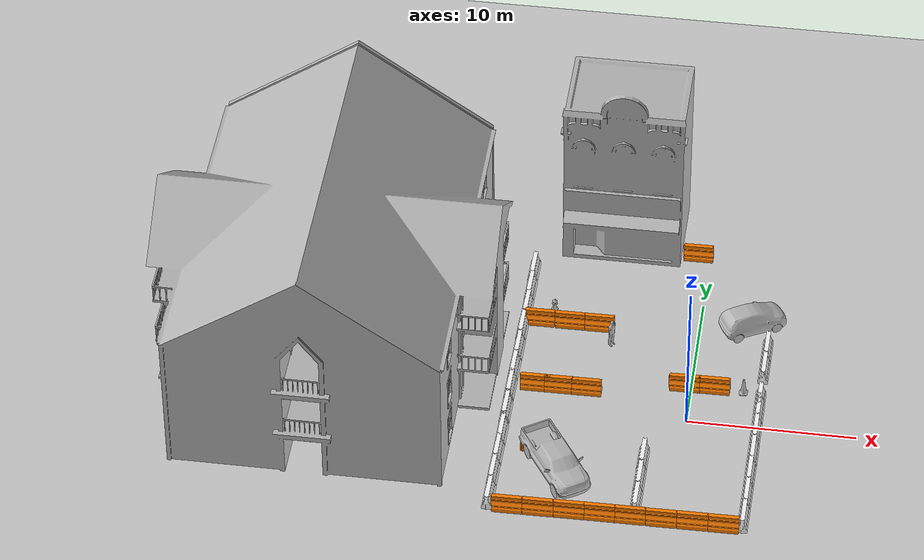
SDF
<sdf version="1.7">
 <world name="default">
  <light name="sun" type="directional">
   <pose>0 0 10 0 -0 0</pose>
   <diffuse>0.8 0.8 0.8 1</diffuse>
   <specular>0.2 0.2 0.2 1</specular>
   <attenuation>
    <range>1000</range>
    <constant>0.9</constant>
    <linear>0.01</linear>
    <quadratic>0.001</quadratic>
   </attenuation>
   <direction>-0.5 0.1 -0.9</direction>
   <spot><inner_angle>0</inner_angle><outer_angle>0</outer_angle><falloff>0</falloff></spot>
  </light>
  <model name="ground_plane">
   <static>1</static>
   <link name="link">
    <collision name="collision">
     <geometry><plane><normal>0 0 1</normal><size>100 100</size></plane></geometry>
     <surface>
      <contact><collide_bitmask>65535</collide_bitmask></contact>
      <friction><ode><mu>100</mu><mu2>50</mu2></ode></friction>
     </surface>
    </collision>
    <visual name="visual">
     <cast_shadows>0</cast_shadows>
     <geometry><plane><normal>0 0 1</normal><size>100 100</size></plane></geometry>
     <material>
      <script><uri>file://media/materials/scripts/gazebo.material</uri><name>Gazebo/Grey</name></script>
     </material>
    </visual>
   </link>
  </model>
  <gravity>0 0 -9.8</gravity>
  <magnetic_field>6e-06 2.3e-05 -4.2e-05</magnetic_field>
  <atmosphere type="adiabatic"/>
  <physics type="ode">
   <max_step_size>0.001</max_step_size>
   <real_time_factor>1</real_time_factor>
   <real_time_update_rate>1000</real_time_update_rate>
  </physics>
  <scene><ambient>0.4 0.4 0.4 1</ambient><background>0.7 0.7 0.7 1</background><shadows>1</shadows></scene>
  <spherical_coordinates>
   <surface_model>EARTH_WGS84</surface_model>
   <latitude_deg>0</latitude_deg>
   <longitude_deg>0</longitude_deg>
   <elevation>0</elevation>
   <heading_deg>0</heading_deg>
  </spherical_coordinates>
  <model name="thrift_shop">
   <static>1</static>
   <link name="link">
    <collision name="collision">
     <pose>0 0 5.69469 0 -0 0</pose>
     <geometry><box><size>7.21297 5.43165 11.3894</size></box></geometry>
    </collision>
    <visual name="visual">
     <pose>0 -0.912491 0 0 -0 0</pose>
     <geometry><mesh><uri>model://thrift_shop/meshes/thrift_shop.dae</uri></mesh></geometry>
    </visual>
   </link>
   <pose>-5.4254 16.0749 0 0 -0 0</pose>
  </model>
  <model name="apartment">
   <static>1</static>
   <link name="link">
    <collision name="collision">
     <geometry><mesh><uri>model://apartment/meshes/apartment.dae</uri></mesh></geometry>
    </collision>
    <visual name="visual">
     <geometry><mesh><uri>model://apartment/meshes/apartment.dae</uri></mesh></geometry>
    </visual>
   </link>
   <pose>-21.482 3.56693 0 0 -0 0</pose>
  </model>
  <model name="person_standing">
   <link name="link">
    <inertial>
     <pose>0 -0.1 0.95 0 -0 0</pose>
     <mass>80</mass>
     <inertia><ixx>24.88</ixx><ixy>0</ixy><ixz>0</ixz><iyy>25.73</iyy><iyz>0</iyz><izz>2.48</izz></inertia>
    </inertial>
    <collision name="bottom">
     <pose>0 -0.1 0.01 0 -0 0</pose>
     <geometry><box><size>0.5 0.35 0.02</size></box></geometry>
    </collision>
    <collision name="person">
     <pose>0 0 0.02 0.04 -0 0</pose>
     <geometry><mesh><uri>model://person_standing/meshes/standing.dae</uri></mesh></geometry>
    </collision>
    <visual name="visual">
     <pose>0 0 0.02 0.04 -0 0</pose>
     <geometry><mesh><uri>model://person_standing/meshes/standing.dae</uri></mesh></geometry>
    </visual>
   </link>
   <pose>-5.19639 5.97581 0 1e-06 -1e-06 0.964401</pose>
  </model>
  <model name="drc_practice_white_jersey_barrier_1_clone_2_clone">
   <static>1</static>
   <link name="link">
    <visual name="visual">
     <geometry>
      <mesh><uri>model://drc_practice_white_jersey_barrier/meshes/jersey_barrier.dae</uri></mesh>
     </geometry>
    </visual>
    <collision name="collision">
     <geometry>
      <mesh><uri>model://drc_practice_white_jersey_barrier/meshes/jersey_barrier.dae</uri></mesh>
     </geometry>
    </collision>
   </link>
   <pose>-2.13805 -7.17112 0 0 -0 0</pose>
  </model>
  <model name="drc_practice_white_jersey_barrier_1_clone_2_clone_0">
   <static>1</static>
   <link name="link">
    <visual name="visual">
     <geometry>
      <mesh><uri>model://drc_practice_white_jersey_barrier/meshes/jersey_barrier.dae</uri></mesh>
     </geometry>
    </visual>
    <collision name="collision">
     <geometry>
      <mesh><uri>model://drc_practice_white_jersey_barrier/meshes/jersey_barrier.dae</uri></mesh>
     </geometry>
    </collision>
   </link>
   <pose>-2.14572 -3.5959 0 0 -0 0</pose>
  </model>
  <model name="drc_practice_white_jersey_barrier_1_clone_2_clone_1">
   <static>1</static>
   <link name="link">
    <visual name="visual">
     <geometry>
      <mesh><uri>model://drc_practice_white_jersey_barrier/meshes/jersey_barrier.dae</uri></mesh>
     </geometry>
    </visual>
    <collision name="collision">
     <geometry>
      <mesh><uri>model://drc_practice_white_jersey_barrier/meshes/jersey_barrier.dae</uri></mesh>
     </geometry>
    </collision>
   </link>
   <pose>-2.14249 -5.38723 0 0 -0 0</pose>
  </model>
  <model name="drc_practice_organge_jersey_barrier_2_clone_3">
   <static>1</static>
   <link name="link">
    <visual name="visual">
     <geometry>
      <mesh><uri>model://drc_practice_orange_jersey_barrier/meshes/jersey_barrier.dae</uri></mesh>
     </geometry>
    </visual>
    <collision name="collision">
     <geometry>
      <mesh><uri>model://drc_practice_orange_jersey_barrier/meshes/jersey_barrier.dae</uri></mesh>
     </geometry>
    </collision>
   </link>
   <pose>-9.13527 1.64077 0 0 0 -1.55605</pose>
  </model>
  <model name="drc_practice_organge_jersey_barrier_2_clone_4">
   <static>1</static>
   <link name="link">
    <visual name="visual">
     <geometry>
      <mesh><uri>model://drc_practice_orange_jersey_barrier/meshes/jersey_barrier.dae</uri></mesh>
     </geometry>
    </visual>
    <collision name="collision">
     <geometry>
      <mesh><uri>model://drc_practice_orange_jersey_barrier/meshes/jersey_barrier.dae</uri></mesh>
     </geometry>
    </collision>
   </link>
   <pose>-7.71946 1.65023 0 0 0 -1.55605</pose>
  </model>
  <model name="Construction Cone">
   <link name="link">
    <collision name="collision">
     <geometry>
      <mesh><scale>10 10 10</scale><uri>model://construction_cone/meshes/construction_cone.dae</uri></mesh>
     </geometry>
    </collision>
    <visual name="visual">
     <geometry>
      <mesh><scale>10 10 10</scale><uri>model://construction_cone/meshes/construction_cone.dae</uri></mesh>
     </geometry>
    </visual>
    <inertial>
     <inertia><ixx>1</ixx><ixy>0</ixy><ixz>0</ixz><iyy>1</iyy><iyz>0</iyz><izz>1</izz></inertia>
     <mass>1</mass>
    </inertial>
   </link>
   <pose>3.08671 2.86219 -0 0 -0 5e-06</pose>
  </model>
  <model name="drc_practice_organge_jersey_barrier_2_clone_5_clone">
   <static>1</static>
   <link name="link">
    <visual name="visual">
     <geometry>
      <mesh><uri>model://drc_practice_orange_jersey_barrier/meshes/jersey_barrier.dae</uri></mesh>
     </geometry>
    </visual>
    <collision name="collision">
     <geometry>
      <mesh><uri>model://drc_practice_orange_jersey_barrier/meshes/jersey_barrier.dae</uri></mesh>
     </geometry>
    </collision>
   </link>
   <pose>-9.59248 7.23763 0 0 0 -1.55605</pose>
  </model>
  <model name="drc_practice_organge_jersey_barrier_2_clone_5_clone_0">
   <static>1</static>
   <link name="link">
    <visual name="visual">
     <geometry>
      <mesh><uri>model://drc_practice_orange_jersey_barrier/meshes/jersey_barrier.dae</uri></mesh>
     </geometry>
    </visual>
    <collision name="collision">
     <geometry>
      <mesh><uri>model://drc_practice_orange_jersey_barrier/meshes/jersey_barrier.dae</uri></mesh>
     </geometry>
    </collision>
   </link>
   <pose>-7.77865 7.23308 0 0 0 -1.55605</pose>
  </model>
  <model name="drc_practice_organge_jersey_barrier_2_clone_5_clone_1">
   <static>1</static>
   <link name="link">
    <visual name="visual">
     <geometry>
      <mesh><uri>model://drc_practice_orange_jersey_barrier/meshes/jersey_barrier.dae</uri></mesh>
     </geometry>
    </visual>
    <collision name="collision">
     <geometry>
      <mesh><uri>model://drc_practice_orange_jersey_barrier/meshes/jersey_barrier.dae</uri></mesh>
     </geometry>
    </collision>
   </link>
   <pose>-5.98696 7.24498 0 0 0 -1.55605</pose>
  </model>
  <model name="pickup">
   <static>1</static>
   <link name="link">
    <collision name="collision">
     <pose>0 0 0 0 0 -1.5708</pose>
     <geometry><mesh><uri>model://pickup/meshes/pickup.dae</uri></mesh></geometry>
    </collision>
    <visual name="visual">
     <pose>0 0 0 0 0 -1.5708</pose>
     <geometry><mesh><uri>model://pickup/meshes/pickup.dae</uri></mesh></geometry>
    </visual>
   </link>
   <pose>-7.00167 -5.09622 0 0 0 -0.990452</pose>
  </model>
  <model name="fire_hydrant">
   <static>1</static>
   <link name="link">
    <collision name="collision">
     <geometry><mesh><uri>model://fire_hydrant/meshes/fire_hydrant.dae</uri></mesh></geometry>
    </collision>
    <visual name="visual">
     <geometry><mesh><uri>model://fire_hydrant/meshes/fire_hydrant.dae</uri></mesh></geometry>
    </visual>
   </link>
   <pose>-8.87998 8.45242 0 0 -0 0</pose>
  </model>
  <model name="hatchback_0">
   <static>1</static>
   <link name="link">
    <collision name="collision">
     <pose>0 0 0 0 -0 1.5708</pose>
     <geometry>
      <mesh><scale>0.0254 0.0254 0.0254</scale><uri>model://hatchback/meshes/hatchback.obj</uri></mesh>
     </geometry>
    </collision>
    <visual name="visual">
     <pose>0 0 0 0 -0 1.5708</pose>
     <geometry>
      <mesh><scale>0.0254 0.0254 0.0254</scale><uri>model://hatchback/meshes/hatchback.obj</uri></mesh>
     </geometry>
    </visual>
   </link>
   <pose>2.77885 8.43096 0 0 -0 0.517608</pose>
  </model>
  <model name="drc_practice_organge_jersey_barrier_2_clone_1_clone_5_clone_0">
   <static>1</static>
   <link name="link">
    <visual name="visual">
     <geometry>
      <mesh><uri>model://drc_practice_orange_jersey_barrier/meshes/jersey_barrier.dae</uri></mesh>
     </geometry>
    </visual>
    <collision name="collision">
     <geometry>
      <mesh><uri>model://drc_practice_orange_jersey_barrier/meshes/jersey_barrier.dae</uri></mesh>
     </geometry>
    </collision>
   </link>
   <pose>1.40627 2.80459 0 0 0 -1.55605</pose>
  </model>
  <model name="drc_practice_organge_jersey_barrier_2_clone_1_clone_5_clone_1">
   <static>1</static>
   <link name="link">
    <visual name="visual">
     <geometry>
      <mesh><uri>model://drc_practice_orange_jersey_barrier/meshes/jersey_barrier.dae</uri></mesh>
     </geometry>
    </visual>
    <collision name="collision">
     <geometry>
      <mesh><uri>model://drc_practice_orange_jersey_barrier/meshes/jersey_barrier.dae</uri></mesh>
     </geometry>
    </collision>
   </link>
   <pose>-0.393871 2.77084 0 0 0 -1.55605</pose>
  </model>
  <model name="drc_practice_organge_jersey_barrier_2_clone_4_clone">
   <static>1</static>
   <link name="link">
    <visual name="visual">
     <geometry>
      <mesh><uri>model://drc_practice_orange_jersey_barrier/meshes/jersey_barrier.dae</uri></mesh>
     </geometry>
    </visual>
    <collision name="collision">
     <geometry>
      <mesh><uri>model://drc_practice_orange_jersey_barrier/meshes/jersey_barrier.dae</uri></mesh>
     </geometry>
    </collision>
   </link>
   <pose>-6.09822 1.66058 0 0 0 -1.55605</pose>
  </model>
  <model name="drc_practice_white_jersey_barrier_1_clone_2_clone_2">
   <static>1</static>
   <link name="link">
    <visual name="visual">
     <geometry>
      <mesh><uri>model://drc_practice_white_jersey_barrier/meshes/jersey_barrier.dae</uri></mesh>
     </geometry>
    </visual>
    <collision name="collision">
     <geometry>
      <mesh><uri>model://drc_practice_white_jersey_barrier/meshes/jersey_barrier.dae</uri></mesh>
     </geometry>
    </collision>
   </link>
   <pose>-10.5824 1.14968 0 0 -0 0</pose>
  </model>
  <model name="drc_practice_white_jersey_barrier_1_clone_2_clone_3">
   <static>1</static>
   <link name="link">
    <visual name="visual">
     <geometry>
      <mesh><uri>model://drc_practice_white_jersey_barrier/meshes/jersey_barrier.dae</uri></mesh>
     </geometry>
    </visual>
    <collision name="collision">
     <geometry>
      <mesh><uri>model://drc_practice_white_jersey_barrier/meshes/jersey_barrier.dae</uri></mesh>
     </geometry>
    </collision>
   </link>
   <pose>-10.5774 -0.732846 0 0 -0 0</pose>
  </model>
  <model name="drc_practice_white_jersey_barrier_1_clone_2_clone_4">
   <static>1</static>
   <link name="link">
    <visual name="visual">
     <geometry>
      <mesh><uri>model://drc_practice_white_jersey_barrier/meshes/jersey_barrier.dae</uri></mesh>
     </geometry>
    </visual>
    <collision name="collision">
     <geometry>
      <mesh><uri>model://drc_practice_white_jersey_barrier/meshes/jersey_barrier.dae</uri></mesh>
     </geometry>
    </collision>
   </link>
   <pose>-10.5616 -2.67341 0 0 -0 0</pose>
  </model>
  <model name="drc_practice_white_jersey_barrier_1_clone_2_clone_5">
   <static>1</static>
   <link name="link">
    <visual name="visual">
     <geometry>
      <mesh><uri>model://drc_practice_white_jersey_barrier/meshes/jersey_barrier.dae</uri></mesh>
     </geometry>
    </visual>
    <collision name="collision">
     <geometry>
      <mesh><uri>model://drc_practice_white_jersey_barrier/meshes/jersey_barrier.dae</uri></mesh>
     </geometry>
    </collision>
   </link>
   <pose>-10.5765 -4.29118 0 0 -0 0</pose>
  </model>
  <model name="drc_practice_white_jersey_barrier_1_clone_2_clone_6">
   <static>1</static>
   <link name="link">
    <visual name="visual">
     <geometry>
      <mesh><uri>model://drc_practice_white_jersey_barrier/meshes/jersey_barrier.dae</uri></mesh>
     </geometry>
    </visual>
    <collision name="collision">
     <geometry>
      <mesh><uri>model://drc_practice_white_jersey_barrier/meshes/jersey_barrier.dae</uri></mesh>
     </geometry>
    </collision>
   </link>
   <pose>-10.5937 -6.06696 0 0 -0 0</pose>
  </model>
  <model name="drc_practice_white_jersey_barrier_1_clone_2_clone_7">
   <static>1</static>
   <link name="link">
    <visual name="visual">
     <geometry>
      <mesh><uri>model://drc_practice_white_jersey_barrier/meshes/jersey_barrier.dae</uri></mesh>
     </geometry>
    </visual>
    <collision name="collision">
     <geometry>
      <mesh><uri>model://drc_practice_white_jersey_barrier/meshes/jersey_barrier.dae</uri></mesh>
     </geometry>
    </collision>
   </link>
   <pose>-10.5917 -7.84525 0 0 -0 0</pose>
  </model>
  <model name="drc_practice_organge_jersey_barrier_2_clone_3_clone">
   <static>1</static>
   <link name="link">
    <visual name="visual">
     <geometry>
      <mesh><uri>model://drc_practice_orange_jersey_barrier/meshes/jersey_barrier.dae</uri></mesh>
     </geometry>
    </visual>
    <collision name="collision">
     <geometry>
      <mesh><uri>model://drc_practice_orange_jersey_barrier/meshes/jersey_barrier.dae</uri></mesh>
     </geometry>
    </collision>
   </link>
   <pose>-9.42951 -8.56327 0 0 0 -1.55605</pose>
  </model>
  <model name="drc_practice_organge_jersey_barrier_2_clone_3_clone_0">
   <static>1</static>
   <link name="link">
    <visual name="visual">
     <geometry>
      <mesh><uri>model://drc_practice_orange_jersey_barrier/meshes/jersey_barrier.dae</uri></mesh>
     </geometry>
    </visual>
    <collision name="collision">
     <geometry>
      <mesh><uri>model://drc_practice_orange_jersey_barrier/meshes/jersey_barrier.dae</uri></mesh>
     </geometry>
    </collision>
   </link>
   <pose>-7.62984 -8.54382 0 0 0 -1.55605</pose>
  </model>
  <model name="drc_practice_organge_jersey_barrier_2_clone_3_clone_1">
   <static>1</static>
   <link name="link">
    <visual name="visual">
     <geometry>
      <mesh><uri>model://drc_practice_orange_jersey_barrier/meshes/jersey_barrier.dae</uri></mesh>
     </geometry>
    </visual>
    <collision name="collision">
     <geometry>
      <mesh><uri>model://drc_practice_orange_jersey_barrier/meshes/jersey_barrier.dae</uri></mesh>
     </geometry>
    </collision>
   </link>
   <pose>-5.84019 -8.51958 0 0 0 -1.55605</pose>
  </model>
  <model name="drc_practice_organge_jersey_barrier_2_clone_3_clone_2">
   <static>1</static>
   <link name="link">
    <visual name="visual">
     <geometry>
      <mesh><uri>model://drc_practice_orange_jersey_barrier/meshes/jersey_barrier.dae</uri></mesh>
     </geometry>
    </visual>
    <collision name="collision">
     <geometry>
      <mesh><uri>model://drc_practice_orange_jersey_barrier/meshes/jersey_barrier.dae</uri></mesh>
     </geometry>
    </collision>
   </link>
   <pose>-4.07225 -8.49759 0 0 0 -1.55605</pose>
  </model>
  <model name="drc_practice_organge_jersey_barrier_2_clone_3_clone_3">
   <static>1</static>
   <link name="link">
    <visual name="visual">
     <geometry>
      <mesh><uri>model://drc_practice_orange_jersey_barrier/meshes/jersey_barrier.dae</uri></mesh>
     </geometry>
    </visual>
    <collision name="collision">
     <geometry>
      <mesh><uri>model://drc_practice_orange_jersey_barrier/meshes/jersey_barrier.dae</uri></mesh>
     </geometry>
    </collision>
   </link>
   <pose>-2.31779 -8.48321 0 0 0 -1.55605</pose>
  </model>
  <model name="drc_practice_organge_jersey_barrier_2_clone_3_clone_4">
   <static>1</static>
   <link name="link">
    <visual name="visual">
     <geometry>
      <mesh><uri>model://drc_practice_orange_jersey_barrier/meshes/jersey_barrier.dae</uri></mesh>
     </geometry>
    </visual>
    <collision name="collision">
     <geometry>
      <mesh><uri>model://drc_practice_orange_jersey_barrier/meshes/jersey_barrier.dae</uri></mesh>
     </geometry>
    </collision>
   </link>
   <pose>-0.526 -8.48193 0 0 0 -1.55605</pose>
  </model>
  <model name="drc_practice_organge_jersey_barrier_2_clone_3_clone_5">
   <static>1</static>
   <link name="link">
    <visual name="visual">
     <geometry>
      <mesh><uri>model://drc_practice_orange_jersey_barrier/meshes/jersey_barrier.dae</uri></mesh>
     </geometry>
    </visual>
    <collision name="collision">
     <geometry>
      <mesh><uri>model://drc_practice_orange_jersey_barrier/meshes/jersey_barrier.dae</uri></mesh>
     </geometry>
    </collision>
   </link>
   <pose>1.26638 -8.46162 0 0 0 -1.55605</pose>
  </model>
  <model name="drc_practice_organge_jersey_barrier_2_clone_3_clone_6">
   <static>1</static>
   <link name="link">
    <visual name="visual">
     <geometry>
      <mesh><uri>model://drc_practice_orange_jersey_barrier/meshes/jersey_barrier.dae</uri></mesh>
     </geometry>
    </visual>
    <collision name="collision">
     <geometry>
      <mesh><uri>model://drc_practice_orange_jersey_barrier/meshes/jersey_barrier.dae</uri></mesh>
     </geometry>
    </collision>
   </link>
   <pose>3.05677 -8.45126 0 0 0 -1.55605</pose>
  </model>
  <model name="drc_practice_white_jersey_barrier_1_clone_2_clone_8">
   <static>1</static>
   <link name="link">
    <visual name="visual">
     <geometry>
      <mesh><uri>model://drc_practice_white_jersey_barrier/meshes/jersey_barrier.dae</uri></mesh>
     </geometry>
    </visual>
    <collision name="collision">
     <geometry>
      <mesh><uri>model://drc_practice_white_jersey_barrier/meshes/jersey_barrier.dae</uri></mesh>
     </geometry>
    </collision>
   </link>
   <pose>4.11658 -7.71709 0 0 -0 0</pose>
  </model>
  <model name="drc_practice_white_jersey_barrier_1_clone_2_clone_8_clone">
   <static>1</static>
   <link name="link">
    <visual name="visual">
     <geometry>
      <mesh><uri>model://drc_practice_white_jersey_barrier/meshes/jersey_barrier.dae</uri></mesh>
     </geometry>
    </visual>
    <collision name="collision">
     <geometry>
      <mesh><uri>model://drc_practice_white_jersey_barrier/meshes/jersey_barrier.dae</uri></mesh>
     </geometry>
    </collision>
   </link>
   <pose>4.12679 -5.94751 0 0 -0 0</pose>
  </model>
  <model name="drc_practice_white_jersey_barrier_1_clone_2_clone_8_clone_0">
   <static>1</static>
   <link name="link">
    <visual name="visual">
     <geometry>
      <mesh><uri>model://drc_practice_white_jersey_barrier/meshes/jersey_barrier.dae</uri></mesh>
     </geometry>
    </visual>
    <collision name="collision">
     <geometry>
      <mesh><uri>model://drc_practice_white_jersey_barrier/meshes/jersey_barrier.dae</uri></mesh>
     </geometry>
    </collision>
   </link>
   <pose>4.13074 -4.18331 0 0 -0 0</pose>
  </model>
  <model name="drc_practice_white_jersey_barrier_1_clone_2_clone_8_clone_1">
   <static>1</static>
   <link name="link">
    <visual name="visual">
     <geometry>
      <mesh><uri>model://drc_practice_white_jersey_barrier/meshes/jersey_barrier.dae</uri></mesh>
     </geometry>
    </visual>
    <collision name="collision">
     <geometry>
      <mesh><uri>model://drc_practice_white_jersey_barrier/meshes/jersey_barrier.dae</uri></mesh>
     </geometry>
    </collision>
   </link>
   <pose>4.14448 -2.43103 0 0 -0 0</pose>
  </model>
  <model name="drc_practice_white_jersey_barrier_1_clone_2_clone_8_clone_2">
   <static>1</static>
   <link name="link">
    <visual name="visual">
     <geometry>
      <mesh><uri>model://drc_practice_white_jersey_barrier/meshes/jersey_barrier.dae</uri></mesh>
     </geometry>
    </visual>
    <collision name="collision">
     <geometry>
      <mesh><uri>model://drc_practice_white_jersey_barrier/meshes/jersey_barrier.dae</uri></mesh>
     </geometry>
    </collision>
   </link>
   <pose>4.14049 -0.651504 0 0 -0 0</pose>
  </model>
  <model name="drc_practice_white_jersey_barrier_1_clone_2_clone_8_clone_3">
   <static>1</static>
   <link name="link">
    <visual name="visual">
     <geometry>
      <mesh><uri>model://drc_practice_white_jersey_barrier/meshes/jersey_barrier.dae</uri></mesh>
     </geometry>
    </visual>
    <collision name="collision">
     <geometry>
      <mesh><uri>model://drc_practice_white_jersey_barrier/meshes/jersey_barrier.dae</uri></mesh>
     </geometry>
    </collision>
   </link>
   <pose>4.14104 1.10939 0 0 -0 0</pose>
  </model>
  <model name="drc_practice_white_jersey_barrier_1_clone_2_clone_8_clone_4">
   <static>1</static>
   <link name="link">
    <visual name="visual">
     <geometry>
      <mesh><uri>model://drc_practice_white_jersey_barrier/meshes/jersey_barrier.dae</uri></mesh>
     </geometry>
    </visual>
    <collision name="collision">
     <geometry>
      <mesh><uri>model://drc_practice_white_jersey_barrier/meshes/jersey_barrier.dae</uri></mesh>
     </geometry>
    </collision>
   </link>
   <pose>4.12854 2.00884 0 0 -0 0</pose>
  </model>
  <model name="drc_practice_white_jersey_barrier_1_clone_2_clone_8_clone_5">
   <static>1</static>
   <link name="link">
    <visual name="visual">
     <geometry>
      <mesh><uri>model://drc_practice_white_jersey_barrier/meshes/jersey_barrier.dae</uri></mesh>
     </geometry>
    </visual>
    <collision name="collision">
     <geometry>
      <mesh><uri>model://drc_practice_white_jersey_barrier/meshes/jersey_barrier.dae</uri></mesh>
     </geometry>
    </collision>
   </link>
   <pose>4.13867 4.65491 0 0 -0 0</pose>
  </model>
  <model name="drc_practice_white_jersey_barrier_1_clone_2_clone_8_clone_6">
   <static>1</static>
   <link name="link">
    <visual name="visual">
     <geometry>
      <mesh><uri>model://drc_practice_white_jersey_barrier/meshes/jersey_barrier.dae</uri></mesh>
     </geometry>
    </visual>
    <collision name="collision">
     <geometry>
      <mesh><uri>model://drc_practice_white_jersey_barrier/meshes/jersey_barrier.dae</uri></mesh>
     </geometry>
    </collision>
   </link>
   <pose>4.14704 6.428 0 0 -0 0</pose>
  </model>
  <model name="drc_practice_white_jersey_barrier_1_clone_2_clone_2_clone">
   <static>1</static>
   <link name="link">
    <visual name="visual">
     <geometry>
      <mesh><uri>model://drc_practice_white_jersey_barrier/meshes/jersey_barrier.dae</uri></mesh>
     </geometry>
    </visual>
    <collision name="collision">
     <geometry>
      <mesh><uri>model://drc_practice_white_jersey_barrier/meshes/jersey_barrier.dae</uri></mesh>
     </geometry>
    </collision>
   </link>
   <pose>-10.58 2.77535 0 0 -0 0</pose>
  </model>
  <model name="drc_practice_white_jersey_barrier_1_clone_2_clone_2_clone_0">
   <static>1</static>
   <link name="link">
    <visual name="visual">
     <geometry>
      <mesh><uri>model://drc_practice_white_jersey_barrier/meshes/jersey_barrier.dae</uri></mesh>
     </geometry>
    </visual>
    <collision name="collision">
     <geometry>
      <mesh><uri>model://drc_practice_white_jersey_barrier/meshes/jersey_barrier.dae</uri></mesh>
     </geometry>
    </collision>
   </link>
   <pose>-10.5598 4.53822 0 0 -0 0</pose>
  </model>
  <model name="drc_practice_white_jersey_barrier_1_clone_2_clone_2_clone_1">
   <static>1</static>
   <link name="link">
    <visual name="visual">
     <geometry>
      <mesh><uri>model://drc_practice_white_jersey_barrier/meshes/jersey_barrier.dae</uri></mesh>
     </geometry>
    </visual>
    <collision name="collision">
     <geometry>
      <mesh><uri>model://drc_practice_white_jersey_barrier/meshes/jersey_barrier.dae</uri></mesh>
     </geometry>
    </collision>
   </link>
   <pose>-10.5661 6.32928 0 0 -0 0</pose>
  </model>
  <model name="drc_practice_white_jersey_barrier_1_clone_2_clone_2_clone_2">
   <static>1</static>
   <link name="link">
    <visual name="visual">
     <geometry>
      <mesh><uri>model://drc_practice_white_jersey_barrier/meshes/jersey_barrier.dae</uri></mesh>
     </geometry>
    </visual>
    <collision name="collision">
     <geometry>
      <mesh><uri>model://drc_practice_white_jersey_barrier/meshes/jersey_barrier.dae</uri></mesh>
     </geometry>
    </collision>
   </link>
   <pose>-10.5291 8.09754 0 0 -0 0</pose>
  </model>
  <model name="drc_practice_white_jersey_barrier_1_clone_2_clone_2_clone_3">
   <static>1</static>
   <link name="link">
    <visual name="visual">
     <geometry>
      <mesh><uri>model://drc_practice_white_jersey_barrier/meshes/jersey_barrier.dae</uri></mesh>
     </geometry>
    </visual>
    <collision name="collision">
     <geometry>
      <mesh><uri>model://drc_practice_white_jersey_barrier/meshes/jersey_barrier.dae</uri></mesh>
     </geometry>
    </collision>
   </link>
   <pose>-10.5348 9.85636 0 0 -0 0</pose>
  </model>
  <model name="drc_practice_white_jersey_barrier_1_clone_2_clone_2_clone_3_clone">
   <static>1</static>
   <link name="link">
    <visual name="visual">
     <geometry>
      <mesh><uri>model://drc_practice_white_jersey_barrier/meshes/jersey_barrier.dae</uri></mesh>
     </geometry>
    </visual>
    <collision name="collision">
     <geometry>
      <mesh><uri>model://drc_practice_white_jersey_barrier/meshes/jersey_barrier.dae</uri></mesh>
     </geometry>
    </collision>
   </link>
   <pose>-10.5524 11.5655 0 0 -0 0</pose>
  </model>
  <model name="drc_practice_organge_jersey_barrier_2_clone_1_clone_5_clone_1_clone">
   <static>1</static>
   <link name="link">
    <visual name="visual">
     <geometry>
      <mesh><uri>model://drc_practice_orange_jersey_barrier/meshes/jersey_barrier.dae</uri></mesh>
     </geometry>
    </visual>
    <collision name="collision">
     <geometry>
      <mesh><uri>model://drc_practice_orange_jersey_barrier/meshes/jersey_barrier.dae</uri></mesh>
     </geometry>
    </collision>
   </link>
   <pose>-0.755961 14.2588 0 0 0 -1.55605</pose>
  </model>
  <model name="drc_practice_organge_jersey_barrier_2_clone_4_clone_clone">
   <static>1</static>
   <link name="link">
    <visual name="visual">
     <geometry>
      <mesh><uri>model://drc_practice_orange_jersey_barrier/meshes/jersey_barrier.dae</uri></mesh>
     </geometry>
    </visual>
    <collision name="collision">
     <geometry>
      <mesh><uri>model://drc_practice_orange_jersey_barrier/meshes/jersey_barrier.dae</uri></mesh>
     </geometry>
    </collision>
   </link>
   <pose>-8.57913 -3.08086 -0.589371 0 0 -0.924637</pose>
  </model>
 </world>
</sdf>
